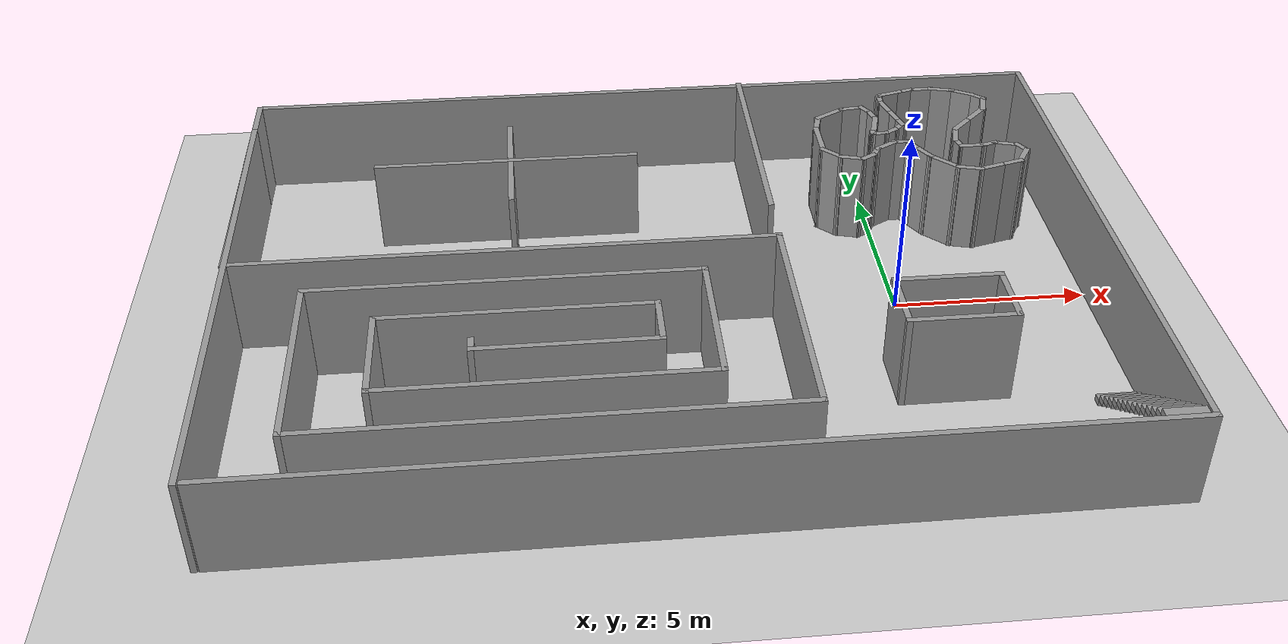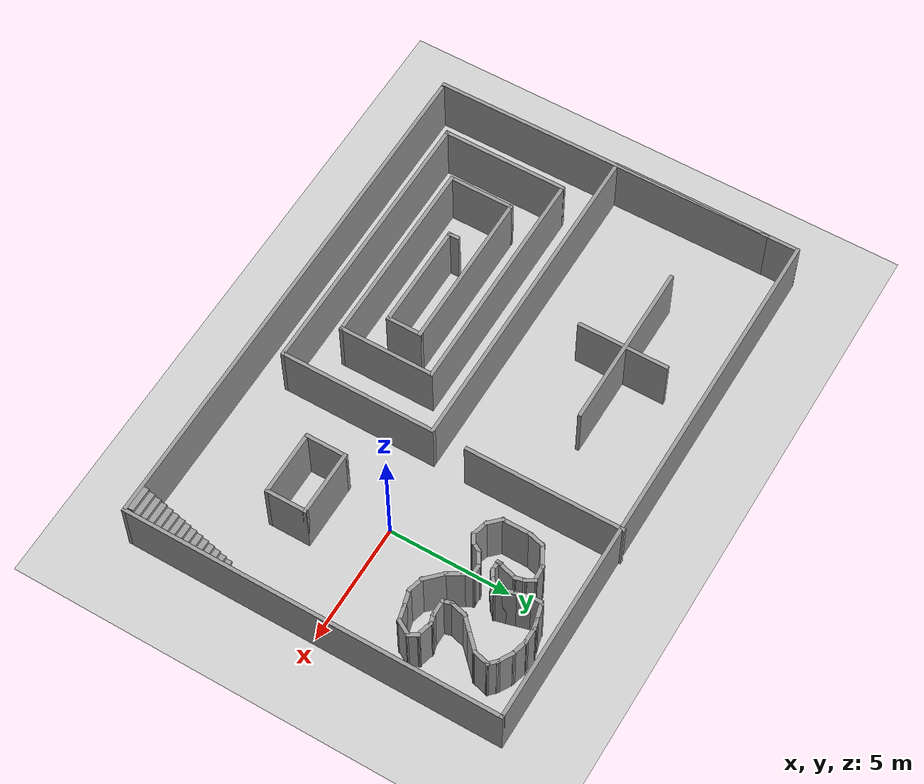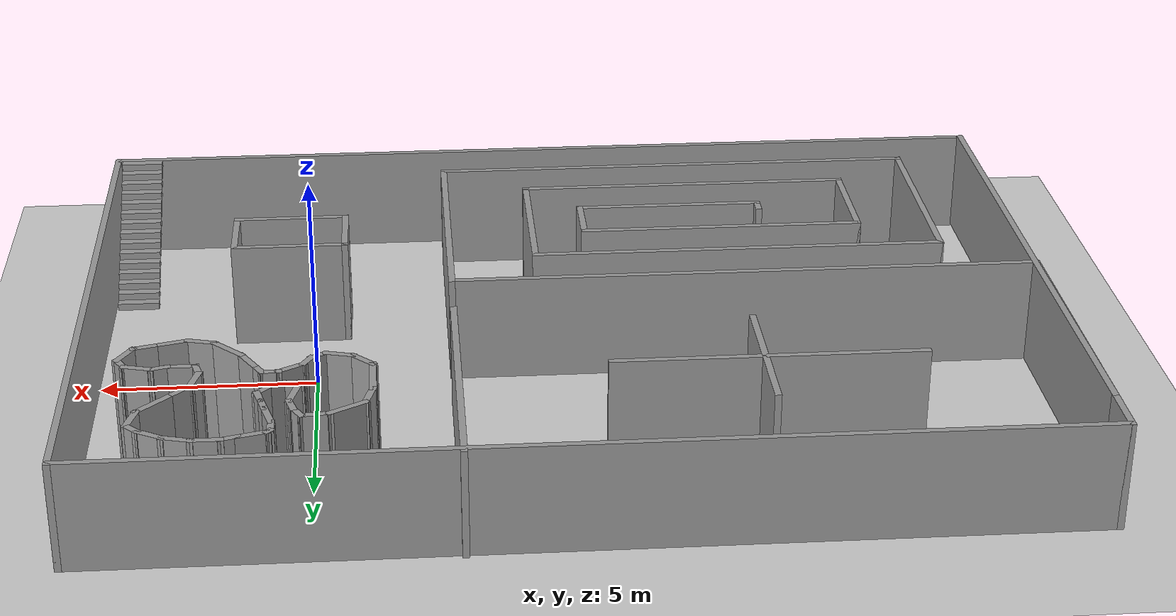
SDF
<sdf version="1.7">
 <world name="default">
  <light name="sun" type="directional">
   <pose>0 0 10 0 -0 0</pose>
   <diffuse>0.8 0.8 0.8 1</diffuse>
   <specular>0.2 0.2 0.2 1</specular>
   <attenuation>
    <range>1000</range>
    <constant>0.9</constant>
    <linear>0.01</linear>
    <quadratic>0.001</quadratic>
   </attenuation>
   <direction>-0.5 0.1 -0.9</direction>
   <spot><inner_angle>0</inner_angle><outer_angle>0</outer_angle><falloff>0</falloff></spot>
  </light>
  <model name="ground_plane">
   <static>1</static>
   <link name="link">
    <collision name="collision">
     <geometry><plane><normal>0 0 1</normal><size>100 100</size></plane></geometry>
     <surface>
      <contact><collide_bitmask>65535</collide_bitmask></contact>
      <friction><ode><mu>100</mu><mu2>50</mu2></ode></friction>
     </surface>
    </collision>
    <visual name="visual">
     <cast_shadows>0</cast_shadows>
     <geometry><plane><normal>0 0 1</normal><size>100 100</size></plane></geometry>
     <material>
      <script><uri>file://media/materials/scripts/gazebo.material</uri><name>Gazebo/Grey</name></script>
     </material>
    </visual>
   </link>
  </model>
  <gravity>0 0 -9.8</gravity>
  <magnetic_field>6e-06 2.3e-05 -4.2e-05</magnetic_field>
  <atmosphere type="adiabatic"/>
  <physics type="ode">
   <max_step_size>0.001</max_step_size>
   <real_time_factor>1</real_time_factor>
   <real_time_update_rate>1000</real_time_update_rate>
  </physics>
  <scene><ambient>0.4 0.4 0.4 1</ambient><background>0.7 0.7 0.7 1</background><shadows>1</shadows></scene>
  <spherical_coordinates>
   <surface_model>EARTH_WGS84</surface_model>
   <latitude_deg>0</latitude_deg>
   <longitude_deg>0</longitude_deg>
   <elevation>0</elevation>
   <heading_deg>0</heading_deg>
  </spherical_coordinates>
  <model name="map_figa">
   <pose>-5.8219 -0.011574 0 0 -0 0</pose>
   <link name="Stairs_0">
    <visual name="Stairs_0_Visual_0">
     <pose>10.3081 -4.25917 0.083333 0 -0 0</pose>
     <geometry><box><size>1 0.233333 0.166667</size></box></geometry>
     <material>
      <script><uri>file://media/materials/scripts/gazebo.material</uri><name>Gazebo/Grey</name></script>
      <ambient>1 1 1 1</ambient>
     </material>
     <meta><layer>0</layer></meta>
    </visual>
    <collision name="Stairs_0_Collision_0">
     <geometry><box><size>1 0.233333 0.166667</size></box></geometry>
     <pose>10.3081 -4.25917 0.083333 0 -0 0</pose>
    </collision>
    <visual name="Stairs_0_Visual_1">
     <pose>10.3081 -4.4925 0.25 0 -0 0</pose>
     <geometry><box><size>1 0.233333 0.166667</size></box></geometry>
     <material>
      <script><uri>file://media/materials/scripts/gazebo.material</uri><name>Gazebo/Grey</name></script>
      <ambient>1 1 1 1</ambient>
     </material>
     <meta><layer>0</layer></meta>
    </visual>
    <collision name="Stairs_0_Collision_1">
     <geometry><box><size>1 0.233333 0.166667</size></box></geometry>
     <pose>10.3081 -4.4925 0.25 0 -0 0</pose>
    </collision>
    <visual name="Stairs_0_Visual_2">
     <pose>10.3081 -4.72584 0.416667 0 -0 0</pose>
     <geometry><box><size>1 0.233333 0.166667</size></box></geometry>
     <material>
      <script><uri>file://media/materials/scripts/gazebo.material</uri><name>Gazebo/Grey</name></script>
      <ambient>1 1 1 1</ambient>
     </material>
     <meta><layer>0</layer></meta>
    </visual>
    <collision name="Stairs_0_Collision_2">
     <geometry><box><size>1 0.233333 0.166667</size></box></geometry>
     <pose>10.3081 -4.72584 0.416667 0 -0 0</pose>
    </collision>
    <visual name="Stairs_0_Visual_3">
     <pose>10.3081 -4.95917 0.583333 0 -0 0</pose>
     <geometry><box><size>1 0.233333 0.166667</size></box></geometry>
     <material>
      <script><uri>file://media/materials/scripts/gazebo.material</uri><name>Gazebo/Grey</name></script>
      <ambient>1 1 1 1</ambient>
     </material>
     <meta><layer>0</layer></meta>
    </visual>
    <collision name="Stairs_0_Collision_3">
     <geometry><box><size>1 0.233333 0.166667</size></box></geometry>
     <pose>10.3081 -4.95917 0.583333 0 -0 0</pose>
    </collision>
    <visual name="Stairs_0_Visual_4">
     <pose>10.3081 -5.1925 0.75 0 -0 0</pose>
     <geometry><box><size>1 0.233333 0.166667</size></box></geometry>
     <material>
      <script><uri>file://media/materials/scripts/gazebo.material</uri><name>Gazebo/Grey</name></script>
      <ambient>1 1 1 1</ambient>
     </material>
     <meta><layer>0</layer></meta>
    </visual>
    <collision name="Stairs_0_Collision_4">
     <geometry><box><size>1 0.233333 0.166667</size></box></geometry>
     <pose>10.3081 -5.1925 0.75 0 -0 0</pose>
    </collision>
    <visual name="Stairs_0_Visual_5">
     <pose>10.3081 -5.42584 0.916667 0 -0 0</pose>
     <geometry><box><size>1 0.233333 0.166667</size></box></geometry>
     <material>
      <script><uri>file://media/materials/scripts/gazebo.material</uri><name>Gazebo/Grey</name></script>
      <ambient>1 1 1 1</ambient>
     </material>
     <meta><layer>0</layer></meta>
    </visual>
    <collision name="Stairs_0_Collision_5">
     <geometry><box><size>1 0.233333 0.166667</size></box></geometry>
     <pose>10.3081 -5.42584 0.916667 0 -0 0</pose>
    </collision>
    <visual name="Stairs_0_Visual_6">
     <pose>10.3081 -5.65917 1.08333 0 -0 0</pose>
     <geometry><box><size>1 0.233333 0.166667</size></box></geometry>
     <material>
      <script><uri>file://media/materials/scripts/gazebo.material</uri><name>Gazebo/Grey</name></script>
      <ambient>1 1 1 1</ambient>
     </material>
     <meta><layer>0</layer></meta>
    </visual>
    <collision name="Stairs_0_Collision_6">
     <geometry><box><size>1 0.233333 0.166667</size></box></geometry>
     <pose>10.3081 -5.65917 1.08333 0 -0 0</pose>
    </collision>
    <visual name="Stairs_0_Visual_7">
     <pose>10.3081 -5.8925 1.25 0 -0 0</pose>
     <geometry><box><size>1 0.233333 0.166667</size></box></geometry>
     <material>
      <script><uri>file://media/materials/scripts/gazebo.material</uri><name>Gazebo/Grey</name></script>
      <ambient>1 1 1 1</ambient>
     </material>
     <meta><layer>0</layer></meta>
    </visual>
    <collision name="Stairs_0_Collision_7">
     <geometry><box><size>1 0.233333 0.166667</size></box></geometry>
     <pose>10.3081 -5.8925 1.25 0 -0 0</pose>
    </collision>
    <visual name="Stairs_0_Visual_8">
     <pose>10.3081 -6.12584 1.41667 0 -0 0</pose>
     <geometry><box><size>1 0.233333 0.166667</size></box></geometry>
     <material>
      <script><uri>file://media/materials/scripts/gazebo.material</uri><name>Gazebo/Grey</name></script>
      <ambient>1 1 1 1</ambient>
     </material>
     <meta><layer>0</layer></meta>
    </visual>
    <collision name="Stairs_0_Collision_8">
     <geometry><box><size>1 0.233333 0.166667</size></box></geometry>
     <pose>10.3081 -6.12584 1.41667 0 -0 0</pose>
    </collision>
    <visual name="Stairs_0_Visual_9">
     <pose>10.3081 -6.35917 1.58333 0 -0 0</pose>
     <geometry><box><size>1 0.233333 0.166667</size></box></geometry>
     <material>
      <script><uri>file://media/materials/scripts/gazebo.material</uri><name>Gazebo/Grey</name></script>
      <ambient>1 1 1 1</ambient>
     </material>
     <meta><layer>0</layer></meta>
    </visual>
    <collision name="Stairs_0_Collision_9">
     <geometry><box><size>1 0.233333 0.166667</size></box></geometry>
     <pose>10.3081 -6.35917 1.58333 0 -0 0</pose>
    </collision>
    <visual name="Stairs_0_Visual_10">
     <pose>10.3081 -6.5925 1.75 0 -0 0</pose>
     <geometry><box><size>1 0.233333 0.166667</size></box></geometry>
     <material>
      <script><uri>file://media/materials/scripts/gazebo.material</uri><name>Gazebo/Grey</name></script>
      <ambient>1 1 1 1</ambient>
     </material>
     <meta><layer>0</layer></meta>
    </visual>
    <collision name="Stairs_0_Collision_10">
     <geometry><box><size>1 0.233333 0.166667</size></box></geometry>
     <pose>10.3081 -6.5925 1.75 0 -0 0</pose>
    </collision>
    <visual name="Stairs_0_Visual_11">
     <pose>10.3081 -6.82584 1.91667 0 -0 0</pose>
     <geometry><box><size>1 0.233333 0.166667</size></box></geometry>
     <material>
      <script><uri>file://media/materials/scripts/gazebo.material</uri><name>Gazebo/Grey</name></script>
      <ambient>1 1 1 1</ambient>
     </material>
     <meta><layer>0</layer></meta>
    </visual>
    <collision name="Stairs_0_Collision_11">
     <geometry><box><size>1 0.233333 0.166667</size></box></geometry>
     <pose>10.3081 -6.82584 1.91667 0 -0 0</pose>
    </collision>
    <visual name="Stairs_0_Visual_12">
     <pose>10.3081 -7.05917 2.08333 0 -0 0</pose>
     <geometry><box><size>1 0.233333 0.166667</size></box></geometry>
     <material>
      <script><uri>file://media/materials/scripts/gazebo.material</uri><name>Gazebo/Grey</name></script>
      <ambient>1 1 1 1</ambient>
     </material>
     <meta><layer>0</layer></meta>
    </visual>
    <collision name="Stairs_0_Collision_12">
     <geometry><box><size>1 0.233333 0.166667</size></box></geometry>
     <pose>10.3081 -7.05917 2.08333 0 -0 0</pose>
    </collision>
    <visual name="Stairs_0_Visual_13">
     <pose>10.3081 -7.2925 2.25 0 -0 0</pose>
     <geometry><box><size>1 0.233333 0.166667</size></box></geometry>
     <material>
      <script><uri>file://media/materials/scripts/gazebo.material</uri><name>Gazebo/Grey</name></script>
      <ambient>1 1 1 1</ambient>
     </material>
     <meta><layer>0</layer></meta>
    </visual>
    <collision name="Stairs_0_Collision_13">
     <geometry><box><size>1 0.233333 0.166667</size></box></geometry>
     <pose>10.3081 -7.2925 2.25 0 -0 0</pose>
    </collision>
    <visual name="Stairs_0_Visual_14">
     <pose>10.3081 -7.52584 2.41667 0 -0 0</pose>
     <geometry><box><size>1 0.233333 0.166667</size></box></geometry>
     <material>
      <script><uri>file://media/materials/scripts/gazebo.material</uri><name>Gazebo/Grey</name></script>
      <ambient>1 1 1 1</ambient>
     </material>
     <meta><layer>0</layer></meta>
    </visual>
    <collision name="Stairs_0_Collision_14">
     <geometry><box><size>1 0.233333 0.166667</size></box></geometry>
     <pose>10.3081 -7.52584 2.41667 0 -0 0</pose>
    </collision>
   </link>
   <link name="Wall_0">
    <collision name="Wall_0_Collision">
     <geometry><box><size>14.25 0.15 2.5</size></box></geometry>
     <pose>0 0 1.25 0 -0 0</pose>
    </collision>
    <visual name="Wall_0_Visual">
     <pose>0 0 1.25 0 -0 0</pose>
     <geometry><box><size>14.25 0.15 2.5</size></box></geometry>
     <material>
      <script><uri>file://media/materials/scripts/gazebo.material</uri><name>Gazebo/Grey</name></script>
      <ambient>1 1 1 1</ambient>
     </material>
     <meta><layer>0</layer></meta>
    </visual>
    <pose>-10.8898 -0.66448 0 0 -0 -1.56584</pose>
   </link>
   <link name="Wall_10">
    <collision name="Wall_10_Collision">
     <geometry><box><size>9.75 0.15 2.5</size></box></geometry>
     <pose>0 0 1.25 0 -0 0</pose>
    </collision>
    <visual name="Wall_10_Visual">
     <pose>0 0 1.25 0 -0 0</pose>
     <geometry><box><size>9.75 0.15 2.5</size></box></geometry>
     <material>
      <script><uri>file://media/materials/scripts/gazebo.material</uri><name>Gazebo/Grey</name></script>
      <ambient>1 1 1 1</ambient>
     </material>
     <meta><layer>0</layer></meta>
    </visual>
    <pose>-4.12482 -1.31448 0 0 -0 0</pose>
   </link>
   <link name="Wall_11">
    <collision name="Wall_11_Collision">
     <geometry><box><size>4 0.15 2.5</size></box></geometry>
     <pose>0 0 1.25 0 -0 0</pose>
    </collision>
    <visual name="Wall_11_Visual">
     <pose>0 0 1.25 0 -0 0</pose>
     <geometry><box><size>4 0.15 2.5</size></box></geometry>
     <material>
      <script><uri>file://media/materials/scripts/gazebo.material</uri><name>Gazebo/Grey</name></script>
      <ambient>1 1 1 1</ambient>
     </material>
     <meta><layer>0</layer></meta>
    </visual>
    <pose>0.675184 -3.23948 0 0 -0 -1.5708</pose>
   </link>
   <link name="Wall_12">
    <collision name="Wall_12_Collision">
     <geometry><box><size>8 0.15 2.5</size></box></geometry>
     <pose>0 0 1.25 0 -0 0</pose>
    </collision>
    <visual name="Wall_12_Visual">
     <pose>0 0 1.25 0 -0 0</pose>
     <geometry><box><size>8 0.15 2.5</size></box></geometry>
     <material>
      <script><uri>file://media/materials/scripts/gazebo.material</uri><name>Gazebo/Grey</name></script>
      <ambient>1 1 1 1</ambient>
     </material>
     <meta><layer>0</layer></meta>
    </visual>
    <pose>-3.24982 -5.16448 0 0 -0 3.14159</pose>
   </link>
   <link name="Wall_13">
    <collision name="Wall_13_Collision">
     <geometry><box><size>2.75 0.15 2.5</size></box></geometry>
     <pose>0 0 1.25 0 -0 0</pose>
    </collision>
    <visual name="Wall_13_Visual">
     <pose>0 0 1.25 0 -0 0</pose>
     <geometry><box><size>2.75 0.15 2.5</size></box></geometry>
     <material>
      <script><uri>file://media/materials/scripts/gazebo.material</uri><name>Gazebo/Grey</name></script>
      <ambient>1 1 1 1</ambient>
     </material>
     <meta><layer>0</layer></meta>
    </visual>
    <pose>-7.17482 -3.86448 0 0 -0 1.5708</pose>
   </link>
   <link name="Wall_14">
    <collision name="Wall_14_Collision">
     <geometry><box><size>6.75 0.15 2.5</size></box></geometry>
     <pose>0 0 1.25 0 -0 0</pose>
    </collision>
    <visual name="Wall_14_Visual">
     <pose>0 0 1.25 0 -0 0</pose>
     <geometry><box><size>6.75 0.15 2.5</size></box></geometry>
     <material>
      <script><uri>file://media/materials/scripts/gazebo.material</uri><name>Gazebo/Grey</name></script>
      <ambient>1 1 1 1</ambient>
     </material>
     <meta><layer>0</layer></meta>
    </visual>
    <pose>-3.87482 -2.56448 0 0 -0 0</pose>
   </link>
   <link name="Wall_15">
    <collision name="Wall_15_Collision">
     <geometry><box><size>1.5 0.15 2.5</size></box></geometry>
     <pose>0 0 1.25 0 -0 0</pose>
    </collision>
    <visual name="Wall_15_Visual">
     <pose>0 0 1.25 0 -0 0</pose>
     <geometry><box><size>1.5 0.15 2.5</size></box></geometry>
     <material>
      <script><uri>file://media/materials/scripts/gazebo.material</uri><name>Gazebo/Grey</name></script>
      <ambient>1 1 1 1</ambient>
     </material>
     <meta><layer>0</layer></meta>
    </visual>
    <pose>-0.574816 -3.23948 0 0 -0 -1.5708</pose>
   </link>
   <link name="Wall_16">
    <collision name="Wall_16_Collision">
     <geometry><box><size>4.5 0.15 2.5</size></box></geometry>
     <pose>0 0 1.25 0 -0 0</pose>
    </collision>
    <visual name="Wall_16_Visual">
     <pose>0 0 1.25 0 -0 0</pose>
     <geometry><box><size>4.5 0.15 2.5</size></box></geometry>
     <material>
      <script><uri>file://media/materials/scripts/gazebo.material</uri><name>Gazebo/Grey</name></script>
      <ambient>1 1 1 1</ambient>
     </material>
     <meta><layer>0</layer></meta>
    </visual>
    <pose>-2.74982 -3.91448 0 0 -0 3.14159</pose>
   </link>
   <link name="Wall_17">
    <collision name="Wall_17_Collision">
     <geometry><box><size>0.5 0.15 2.5</size></box></geometry>
     <pose>0 0 1.25 0 -0 0</pose>
    </collision>
    <visual name="Wall_17_Visual">
     <pose>0 0 1.25 0 -0 0</pose>
     <geometry><box><size>0.5 0.15 2.5</size></box></geometry>
     <material>
      <script><uri>file://media/materials/scripts/gazebo.material</uri><name>Gazebo/Grey</name></script>
      <ambient>1 1 1 1</ambient>
     </material>
     <meta><layer>0</layer></meta>
    </visual>
    <pose>-4.92482 -3.73948 0 0 -0 1.5708</pose>
   </link>
   <link name="Wall_20">
    <collision name="Wall_20_Collision">
     <geometry><box><size>6.5 0.15 2.5</size></box></geometry>
     <pose>0 0 1.25 0 -0 0</pose>
    </collision>
    <visual name="Wall_20_Visual">
     <pose>0 0 1.25 0 -0 0</pose>
     <geometry><box><size>6.5 0.15 2.5</size></box></geometry>
     <material>
      <script><uri>file://media/materials/scripts/gazebo.material</uri><name>Gazebo/Grey</name></script>
      <ambient>1 1 1 1</ambient>
     </material>
     <meta><layer>0</layer></meta>
    </visual>
    <pose>2.68245 4.53977 0 0 -0 -1.5708</pose>
   </link>
   <link name="Wall_22">
    <collision name="Wall_22_Collision">
     <geometry><box><size>7 0.15 2.5</size></box></geometry>
     <pose>0 0 1.25 0 -0 0</pose>
    </collision>
    <visual name="Wall_22_Visual">
     <pose>0 0 1.25 0 -0 0</pose>
     <geometry><box><size>7 0.15 2.5</size></box></geometry>
     <material>
      <script><uri>file://media/materials/scripts/gazebo.material</uri><name>Gazebo/Grey</name></script>
      <ambient>1 1 1 1</ambient>
     </material>
     <meta><layer>0</layer></meta>
    </visual>
    <pose>-4.03678 4.14679 0 0 -0 0</pose>
   </link>
   <link name="Wall_24">
    <collision name="Wall_24_Collision">
     <geometry><box><size>3.75 0.15 2.5</size></box></geometry>
     <pose>0 0 1.25 0 -0 0</pose>
    </collision>
    <visual name="Wall_24_Visual">
     <pose>0 0 1.25 0 -0 0</pose>
     <geometry><box><size>3.75 0.15 2.5</size></box></geometry>
     <material>
      <script><uri>file://media/materials/scripts/gazebo.material</uri><name>Gazebo/Grey</name></script>
      <ambient>1 1 1 1</ambient>
     </material>
     <meta><layer>0</layer></meta>
    </visual>
    <pose>-3.92879 4.06082 0 0 -0 -1.5708</pose>
   </link>
   <link name="Wall_26">
    <collision name="Wall_26_Collision">
     <geometry><box><size>22 0.15 2.5</size></box></geometry>
     <pose>0 0 1.25 0 -0 0</pose>
    </collision>
    <visual name="Wall_26_Visual">
     <pose>0 0 1.25 0 -0 0</pose>
     <geometry><box><size>22 0.15 2.5</size></box></geometry>
     <material>
      <script><uri>file://media/materials/scripts/gazebo.material</uri><name>Gazebo/Grey</name></script>
      <ambient>1 1 1 1</ambient>
     </material>
     <meta><layer>0</layer></meta>
    </visual>
    <pose>0.000184 7.63552 0 0 -0 0</pose>
   </link>
   <link name="Wall_27">
    <collision name="Wall_27_Collision">
     <geometry><box><size>15.5 0.15 2.5</size></box></geometry>
     <pose>0 0 1.25 0 -0 0</pose>
    </collision>
    <visual name="Wall_27_Visual">
     <pose>0 0 1.25 0 -0 0</pose>
     <geometry><box><size>15.5 0.15 2.5</size></box></geometry>
     <material>
      <script><uri>file://media/materials/scripts/gazebo.material</uri><name>Gazebo/Grey</name></script>
      <ambient>1 1 1 1</ambient>
     </material>
     <meta><layer>0</layer></meta>
    </visual>
    <pose>10.9252 -0.03948 0 0 -0 -1.5708</pose>
   </link>
   <link name="Wall_28">
    <collision name="Wall_28_Collision">
     <geometry><box><size>21.75 0.15 2.5</size></box></geometry>
     <pose>0 0 1.25 0 -0 0</pose>
    </collision>
    <visual name="Wall_28_Visual">
     <pose>0 0 1.25 0 -0 0</pose>
     <geometry><box><size>21.75 0.15 2.5</size></box></geometry>
     <material>
      <script><uri>file://media/materials/scripts/gazebo.material</uri><name>Gazebo/Grey</name></script>
      <ambient>1 1 1 1</ambient>
     </material>
     <meta><layer>0</layer></meta>
    </visual>
    <pose>0.125184 -7.71448 0 0 -0 3.14159</pose>
   </link>
   <link name="Wall_30">
    <collision name="Wall_30_Collision">
     <geometry><box><size>1 0.15 2.5</size></box></geometry>
     <pose>0 0 1.25 0 -0 0</pose>
    </collision>
    <visual name="Wall_30_Visual">
     <pose>0 0 1.25 0 -0 0</pose>
     <geometry><box><size>1 0.15 2.5</size></box></geometry>
     <material>
      <script><uri>file://media/materials/scripts/gazebo.material</uri><name>Gazebo/Grey</name></script>
      <ambient>1 1 1 1</ambient>
     </material>
     <meta><layer>0</layer></meta>
    </visual>
    <pose>5.00786 5.78824 0 0 -0 -2.61799</pose>
   </link>
   <link name="Wall_31">
    <collision name="Wall_31_Collision">
     <geometry><box><size>0.75 0.15 2.5</size></box></geometry>
     <pose>0 0 1.25 0 -0 0</pose>
    </collision>
    <visual name="Wall_31_Visual">
     <pose>0 0 1.25 0 -0 0</pose>
     <geometry><box><size>0.75 0.15 2.5</size></box></geometry>
     <material>
      <script><uri>file://media/materials/scripts/gazebo.material</uri><name>Gazebo/Grey</name></script>
      <ambient>1 1 1 1</ambient>
     </material>
     <meta><layer>0</layer></meta>
    </visual>
    <pose>4.56215 5.28596 0 0 -0 -1.8326</pose>
   </link>
   <link name="Wall_32">
    <collision name="Wall_32_Collision">
     <geometry><box><size>1.25 0.15 2.5</size></box></geometry>
     <pose>0 0 1.25 0 -0 0</pose>
    </collision>
    <visual name="Wall_32_Visual">
     <pose>0 0 1.25 0 -0 0</pose>
     <geometry><box><size>1.25 0.15 2.5</size></box></geometry>
     <material>
      <script><uri>file://media/materials/scripts/gazebo.material</uri><name>Gazebo/Grey</name></script>
      <ambient>1 1 1 1</ambient>
     </material>
     <meta><layer>0</layer></meta>
    </visual>
    <pose>4.48451 4.44618 0 0 -0 -1.5708</pose>
   </link>
   <link name="Wall_33">
    <collision name="Wall_33_Collision">
     <geometry><box><size>0.75 0.15 2.5</size></box></geometry>
     <pose>0 0 1.25 0 -0 0</pose>
    </collision>
    <visual name="Wall_33_Visual">
     <pose>0 0 1.25 0 -0 0</pose>
     <geometry><box><size>0.75 0.15 2.5</size></box></geometry>
     <material>
      <script><uri>file://media/materials/scripts/gazebo.material</uri><name>Gazebo/Grey</name></script>
      <ambient>1 1 1 1</ambient>
     </material>
     <meta><layer>0</layer></meta>
    </visual>
    <pose>4.69664 3.68405 0 0 -0 -0.785398</pose>
   </link>
   <link name="Wall_34">
    <collision name="Wall_34_Collision">
     <geometry><box><size>0.75 0.15 2.5</size></box></geometry>
     <pose>0 0 1.25 0 -0 0</pose>
    </collision>
    <visual name="Wall_34_Visual">
     <pose>0 0 1.25 0 -0 0</pose>
     <geometry><box><size>0.75 0.15 2.5</size></box></geometry>
     <material>
      <script><uri>file://media/materials/scripts/gazebo.material</uri><name>Gazebo/Grey</name></script>
      <ambient>1 1 1 1</ambient>
     </material>
     <meta><layer>0</layer></meta>
    </visual>
    <pose>5.19855 3.39427 0 0 -0 -0.261799</pose>
   </link>
   <link name="Wall_35">
    <collision name="Wall_35_Collision">
     <geometry><box><size>0.5 0.15 2.5</size></box></geometry>
     <pose>0 0 1.25 0 -0 0</pose>
    </collision>
    <visual name="Wall_35_Visual">
     <pose>0 0 1.25 0 -0 0</pose>
     <geometry><box><size>0.5 0.15 2.5</size></box></geometry>
     <material>
      <script><uri>file://media/materials/scripts/gazebo.material</uri><name>Gazebo/Grey</name></script>
      <ambient>1 1 1 1</ambient>
     </material>
     <meta><layer>0</layer></meta>
    </visual>
    <pose>5.63988 3.40413 0 0 -0 0.523599</pose>
   </link>
   <link name="Wall_36">
    <collision name="Wall_36_Collision">
     <geometry><box><size>0.5 0.15 2.5</size></box></geometry>
     <pose>0 0 1.25 0 -0 0</pose>
    </collision>
    <visual name="Wall_36_Visual">
     <pose>0 0 1.25 0 -0 0</pose>
     <geometry><box><size>0.5 0.15 2.5</size></box></geometry>
     <material>
      <script><uri>file://media/materials/scripts/gazebo.material</uri><name>Gazebo/Grey</name></script>
      <ambient>1 1 1 1</ambient>
     </material>
     <meta><layer>0</layer></meta>
    </visual>
    <pose>5.87894 3.64318 0 0 -0 1.0472</pose>
   </link>
   <link name="Wall_37">
    <collision name="Wall_37_Collision">
     <geometry><box><size>0.75 0.15 2.5</size></box></geometry>
     <pose>0 0 1.25 0 -0 0</pose>
    </collision>
    <visual name="Wall_37_Visual">
     <pose>0 0 1.25 0 -0 0</pose>
     <geometry><box><size>0.75 0.15 2.5</size></box></geometry>
     <material>
      <script><uri>file://media/materials/scripts/gazebo.material</uri><name>Gazebo/Grey</name></script>
      <ambient>1 1 1 1</ambient>
     </material>
     <meta><layer>0</layer></meta>
    </visual>
    <pose>6.22624 3.94474 0 0 -0 0.523599</pose>
   </link>
   <link name="Wall_38">
    <collision name="Wall_38_Collision">
     <geometry><box><size>0.5 0.15 2.5</size></box></geometry>
     <pose>0 0 1.25 0 -0 0</pose>
    </collision>
    <visual name="Wall_38_Visual">
     <pose>0 0 1.25 0 -0 0</pose>
     <geometry><box><size>0.5 0.15 2.5</size></box></geometry>
     <material>
      <script><uri>file://media/materials/scripts/gazebo.material</uri><name>Gazebo/Grey</name></script>
      <ambient>1 1 1 1</ambient>
     </material>
     <meta><layer>0</layer></meta>
    </visual>
    <pose>6.66105 4.09474 0 0 -0 0</pose>
   </link>
   <link name="Wall_39">
    <collision name="Wall_39_Collision">
     <geometry><box><size>0.5 0.15 2.5</size></box></geometry>
     <pose>0 0 1.25 0 -0 0</pose>
    </collision>
    <visual name="Wall_39_Visual">
     <pose>0 0 1.25 0 -0 0</pose>
     <geometry><box><size>0.5 0.15 2.5</size></box></geometry>
     <material>
      <script><uri>file://media/materials/scripts/gazebo.material</uri><name>Gazebo/Grey</name></script>
      <ambient>1 1 1 1</ambient>
     </material>
     <meta><layer>0</layer></meta>
    </visual>
    <pose>6.92355 3.94318 0 0 -0 -1.0472</pose>
   </link>
   <link name="Wall_4">
    <collision name="Wall_4_Collision">
     <geometry><box><size>1.75 0.15 2.5</size></box></geometry>
     <pose>0 0 1.25 0 -0 0</pose>
    </collision>
    <visual name="Wall_4_Visual">
     <pose>0 0 1.25 0 -0 0</pose>
     <geometry><box><size>1.75 0.15 2.5</size></box></geometry>
     <material>
      <script><uri>file://media/materials/scripts/gazebo.material</uri><name>Gazebo/Grey</name></script>
      <ambient>1 1 1 1</ambient>
     </material>
     <meta><layer>0</layer></meta>
    </visual>
    <pose>-10.9248 6.83552 0 0 -0 -1.5708</pose>
   </link>
   <link name="Wall_40">
    <collision name="Wall_40_Collision">
     <geometry><box><size>0.75 0.15 2.5</size></box></geometry>
     <pose>0 0 1.25 0 -0 0</pose>
    </collision>
    <visual name="Wall_40_Visual">
     <pose>0 0 1.25 0 -0 0</pose>
     <geometry><box><size>0.75 0.15 2.5</size></box></geometry>
     <material>
      <script><uri>file://media/materials/scripts/gazebo.material</uri><name>Gazebo/Grey</name></script>
      <ambient>1 1 1 1</ambient>
     </material>
     <meta><layer>0</layer></meta>
    </visual>
    <pose>7.16105 3.53182 0 0 -0 -1.0472</pose>
   </link>
   <link name="Wall_41">
    <collision name="Wall_41_Collision">
     <geometry><box><size>1 0.15 2.5</size></box></geometry>
     <pose>0 0 1.25 0 -0 0</pose>
    </collision>
    <visual name="Wall_41_Visual">
     <pose>0 0 1.25 0 -0 0</pose>
     <geometry><box><size>1 0.15 2.5</size></box></geometry>
     <material>
      <script><uri>file://media/materials/scripts/gazebo.material</uri><name>Gazebo/Grey</name></script>
      <ambient>1 1 1 1</ambient>
     </material>
     <meta><layer>0</layer></meta>
    </visual>
    <pose>7.61157 2.97149 0 0 -0 -0.785398</pose>
   </link>
   <link name="Wall_42">
    <collision name="Wall_42_Collision">
     <geometry><box><size>0.75 0.15 2.5</size></box></geometry>
     <pose>0 0 1.25 0 -0 0</pose>
    </collision>
    <visual name="Wall_42_Visual">
     <pose>0 0 1.25 0 -0 0</pose>
     <geometry><box><size>0.75 0.15 2.5</size></box></geometry>
     <material>
      <script><uri>file://media/materials/scripts/gazebo.material</uri><name>Gazebo/Grey</name></script>
      <ambient>1 1 1 1</ambient>
     </material>
     <meta><layer>0</layer></meta>
    </visual>
    <pose>8.20187 2.59333 0 0 -0 -0.261799</pose>
   </link>
   <link name="Wall_43">
    <collision name="Wall_43_Collision">
     <geometry><box><size>0.75 0.15 2.5</size></box></geometry>
     <pose>0 0 1.25 0 -0 0</pose>
    </collision>
    <visual name="Wall_43_Visual">
     <pose>0 0 1.25 0 -0 0</pose>
     <geometry><box><size>0.75 0.15 2.5</size></box></geometry>
     <material>
      <script><uri>file://media/materials/scripts/gazebo.material</uri><name>Gazebo/Grey</name></script>
      <ambient>1 1 1 1</ambient>
     </material>
     <meta><layer>0</layer></meta>
    </visual>
    <pose>8.78143 2.59333 0 0 -0 0.261799</pose>
   </link>
   <link name="Wall_44">
    <collision name="Wall_44_Collision">
     <geometry><box><size>0.75 0.15 2.5</size></box></geometry>
     <pose>0 0 1.25 0 -0 0</pose>
    </collision>
    <visual name="Wall_44_Visual">
     <pose>0 0 1.25 0 -0 0</pose>
     <geometry><box><size>0.75 0.15 2.5</size></box></geometry>
     <material>
      <script><uri>file://media/materials/scripts/gazebo.material</uri><name>Gazebo/Grey</name></script>
      <ambient>1 1 1 1</ambient>
     </material>
     <meta><layer>0</layer></meta>
    </visual>
    <pose>9.36098 2.74862 0 0 -0 0.261799</pose>
   </link>
   <link name="Wall_45">
    <collision name="Wall_45_Collision">
     <geometry><box><size>0.75 0.15 2.5</size></box></geometry>
     <pose>0 0 1.25 0 -0 0</pose>
    </collision>
    <visual name="Wall_45_Visual">
     <pose>0 0 1.25 0 -0 0</pose>
     <geometry><box><size>0.75 0.15 2.5</size></box></geometry>
     <material>
      <script><uri>file://media/materials/scripts/gazebo.material</uri><name>Gazebo/Grey</name></script>
      <ambient>1 1 1 1</ambient>
     </material>
     <meta><layer>0</layer></meta>
    </visual>
    <pose>9.80076 3.08607 0 0 -0 1.0472</pose>
   </link>
   <link name="Wall_46">
    <collision name="Wall_46_Collision">
     <geometry><box><size>0.5 0.15 2.5</size></box></geometry>
     <pose>0 0 1.25 0 -0 0</pose>
    </collision>
    <visual name="Wall_46_Visual">
     <pose>0 0 1.25 0 -0 0</pose>
     <geometry><box><size>0.5 0.15 2.5</size></box></geometry>
     <material>
      <script><uri>file://media/materials/scripts/gazebo.material</uri><name>Gazebo/Grey</name></script>
      <ambient>1 1 1 1</ambient>
     </material>
     <meta><layer>0</layer></meta>
    </visual>
    <pose>9.86326 3.49743 0 0 -0 2.0944</pose>
   </link>
   <link name="Wall_47">
    <collision name="Wall_47_Collision">
     <geometry><box><size>0.75 0.15 2.5</size></box></geometry>
     <pose>0 0 1.25 0 -0 0</pose>
    </collision>
    <visual name="Wall_47_Visual">
     <pose>0 0 1.25 0 -0 0</pose>
     <geometry><box><size>0.75 0.15 2.5</size></box></geometry>
     <material>
      <script><uri>file://media/materials/scripts/gazebo.material</uri><name>Gazebo/Grey</name></script>
      <ambient>1 1 1 1</ambient>
     </material>
     <meta><layer>0</layer></meta>
    </visual>
    <pose>9.48598 3.72663 0 0 -0 2.87979</pose>
   </link>
   <link name="Wall_48">
    <collision name="Wall_48_Collision">
     <geometry><box><size>0.5 0.15 2.5</size></box></geometry>
     <pose>0 0 1.25 0 -0 0</pose>
    </collision>
    <visual name="Wall_48_Visual">
     <pose>0 0 1.25 0 -0 0</pose>
     <geometry><box><size>0.5 0.15 2.5</size></box></geometry>
     <material>
      <script><uri>file://media/materials/scripts/gazebo.material</uri><name>Gazebo/Grey</name></script>
      <ambient>1 1 1 1</ambient>
     </material>
     <meta><layer>0</layer></meta>
    </visual>
    <pose>9.02717 3.75899 0 0 -0 -2.87979</pose>
   </link>
   <link name="Wall_49">
    <collision name="Wall_49_Collision">
     <geometry><box><size>0.75 0.15 2.5</size></box></geometry>
     <pose>0 0 1.25 0 -0 0</pose>
    </collision>
    <visual name="Wall_49_Visual">
     <pose>0 0 1.25 0 -0 0</pose>
     <geometry><box><size>0.75 0.15 2.5</size></box></geometry>
     <material>
      <script><uri>file://media/materials/scripts/gazebo.material</uri><name>Gazebo/Grey</name></script>
      <ambient>1 1 1 1</ambient>
     </material>
     <meta><layer>0</layer></meta>
    </visual>
    <pose>8.55813 3.71369 0 0 -0 3.14159</pose>
   </link>
   <link name="Wall_5">
    <collision name="Wall_5_Collision">
     <geometry><box><size>6.25 0.15 2.5</size></box></geometry>
     <pose>0 0 1.25 0 -0 0</pose>
    </collision>
    <visual name="Wall_5_Visual">
     <pose>0 0 1.25 0 -0 0</pose>
     <geometry><box><size>6.25 0.15 2.5</size></box></geometry>
     <material>
      <script><uri>file://media/materials/scripts/gazebo.material</uri><name>Gazebo/Grey</name></script>
      <ambient>1 1 1 1</ambient>
     </material>
     <meta><layer>0</layer></meta>
    </visual>
    <pose>-10.9248 2.98552 0 0 -0 -1.5708</pose>
   </link>
   <link name="Wall_50">
    <collision name="Wall_50_Collision">
     <geometry><box><size>0.5 0.15 2.5</size></box></geometry>
     <pose>0 0 1.25 0 -0 0</pose>
    </collision>
    <visual name="Wall_50_Visual">
     <pose>0 0 1.25 0 -0 0</pose>
     <geometry><box><size>0.5 0.15 2.5</size></box></geometry>
     <material>
      <script><uri>file://media/materials/scripts/gazebo.material</uri><name>Gazebo/Grey</name></script>
      <ambient>1 1 1 1</ambient>
     </material>
     <meta><layer>0</layer></meta>
    </visual>
    <pose>8.21284 3.88273 0 0 -0 1.8326</pose>
   </link>
   <link name="Wall_51">
    <collision name="Wall_51_Collision">
     <geometry><box><size>0.75 0.15 2.5</size></box></geometry>
     <pose>0 0 1.25 0 -0 0</pose>
    </collision>
    <visual name="Wall_51_Visual">
     <pose>0 0 1.25 0 -0 0</pose>
     <geometry><box><size>0.75 0.15 2.5</size></box></geometry>
     <material>
      <script><uri>file://media/materials/scripts/gazebo.material</uri><name>Gazebo/Grey</name></script>
      <ambient>1 1 1 1</ambient>
     </material>
     <meta><layer>0</layer></meta>
    </visual>
    <pose>8.24519 4.34154 0 0 -0 1.309</pose>
   </link>
   <link name="Wall_52">
    <collision name="Wall_52_Collision">
     <geometry><box><size>0.75 0.15 2.5</size></box></geometry>
     <pose>0 0 1.25 0 -0 0</pose>
    </collision>
    <visual name="Wall_52_Visual">
     <pose>0 0 1.25 0 -0 0</pose>
     <geometry><box><size>0.75 0.15 2.5</size></box></geometry>
     <material>
      <script><uri>file://media/materials/scripts/gazebo.material</uri><name>Gazebo/Grey</name></script>
      <ambient>1 1 1 1</ambient>
     </material>
     <meta><layer>0</layer></meta>
    </visual>
    <pose>8.53497 4.84345 0 0 -0 0.785398</pose>
   </link>
   <link name="Wall_53">
    <collision name="Wall_53_Collision">
     <geometry><box><size>1 0.15 2.5</size></box></geometry>
     <pose>0 0 1.25 0 -0 0</pose>
    </collision>
    <visual name="Wall_53_Visual">
     <pose>0 0 1.25 0 -0 0</pose>
     <geometry><box><size>1 0.15 2.5</size></box></geometry>
     <material>
      <script><uri>file://media/materials/scripts/gazebo.material</uri><name>Gazebo/Grey</name></script>
      <ambient>1 1 1 1</ambient>
     </material>
     <meta><layer>0</layer></meta>
    </visual>
    <pose>9.04762 5.35611 0 0 -0 0.785398</pose>
   </link>
   <link name="Wall_54">
    <collision name="Wall_54_Collision">
     <geometry><box><size>0.75 0.15 2.5</size></box></geometry>
     <pose>0 0 1.25 0 -0 0</pose>
    </collision>
    <visual name="Wall_54_Visual">
     <pose>0 0 1.25 0 -0 0</pose>
     <geometry><box><size>0.75 0.15 2.5</size></box></geometry>
     <material>
      <script><uri>file://media/materials/scripts/gazebo.material</uri><name>Gazebo/Grey</name></script>
      <ambient>1 1 1 1</ambient>
     </material>
     <meta><layer>0</layer></meta>
    </visual>
    <pose>9.42579 5.9464 0 0 -0 1.309</pose>
   </link>
   <link name="Wall_55">
    <collision name="Wall_55_Collision">
     <geometry><box><size>0.5 0.15 2.5</size></box></geometry>
     <pose>0 0 1.25 0 -0 0</pose>
    </collision>
    <visual name="Wall_55_Visual">
     <pose>0 0 1.25 0 -0 0</pose>
     <geometry><box><size>0.5 0.15 2.5</size></box></geometry>
     <material>
      <script><uri>file://media/materials/scripts/gazebo.material</uri><name>Gazebo/Grey</name></script>
      <ambient>1 1 1 1</ambient>
     </material>
     <meta><layer>0</layer></meta>
    </visual>
    <pose>9.37969 6.35993 0 0 -0 2.35619</pose>
   </link>
   <link name="Wall_56">
    <collision name="Wall_56_Collision">
     <geometry><box><size>0.75 0.15 2.5</size></box></geometry>
     <pose>0 0 1.25 0 -0 0</pose>
    </collision>
    <visual name="Wall_56_Visual">
     <pose>0 0 1.25 0 -0 0</pose>
     <geometry><box><size>0.75 0.15 2.5</size></box></geometry>
     <material>
      <script><uri>file://media/materials/scripts/gazebo.material</uri><name>Gazebo/Grey</name></script>
      <ambient>1 1 1 1</ambient>
     </material>
     <meta><layer>0</layer></meta>
    </visual>
    <pose>8.99614 6.63367 0 0 -0 2.61799</pose>
   </link>
   <link name="Wall_57">
    <collision name="Wall_57_Collision">
     <geometry><box><size>0.75 0.15 2.5</size></box></geometry>
     <pose>0 0 1.25 0 -0 0</pose>
    </collision>
    <visual name="Wall_57_Visual">
     <pose>0 0 1.25 0 -0 0</pose>
     <geometry><box><size>0.75 0.15 2.5</size></box></geometry>
     <material>
      <script><uri>file://media/materials/scripts/gazebo.material</uri><name>Gazebo/Grey</name></script>
      <ambient>1 1 1 1</ambient>
     </material>
     <meta><layer>0</layer></meta>
    </visual>
    <pose>8.44655 6.86132 0 0 -0 2.87979</pose>
   </link>
   <link name="Wall_58">
    <collision name="Wall_58_Collision">
     <geometry><box><size>0.75 0.15 2.5</size></box></geometry>
     <pose>0 0 1.25 0 -0 0</pose>
    </collision>
    <visual name="Wall_58_Visual">
     <pose>0 0 1.25 0 -0 0</pose>
     <geometry><box><size>0.75 0.15 2.5</size></box></geometry>
     <material>
      <script><uri>file://media/materials/scripts/gazebo.material</uri><name>Gazebo/Grey</name></script>
      <ambient>1 1 1 1</ambient>
     </material>
     <meta><layer>0</layer></meta>
    </visual>
    <pose>7.85677 6.93896 0 0 -0 3.14159</pose>
   </link>
   <link name="Wall_59">
    <collision name="Wall_59_Collision">
     <geometry><box><size>0.5 0.15 2.5</size></box></geometry>
     <pose>0 0 1.25 0 -0 0</pose>
    </collision>
    <visual name="Wall_59_Visual">
     <pose>0 0 1.25 0 -0 0</pose>
     <geometry><box><size>0.5 0.15 2.5</size></box></geometry>
     <material>
      <script><uri>file://media/materials/scripts/gazebo.material</uri><name>Gazebo/Grey</name></script>
      <ambient>1 1 1 1</ambient>
     </material>
     <meta><layer>0</layer></meta>
    </visual>
    <pose>7.38774 6.89367 0 0 -0 -2.87979</pose>
   </link>
   <link name="Wall_6">
    <collision name="Wall_6_Collision">
     <geometry><box><size>13.75 0.15 2.5</size></box></geometry>
     <pose>0 0 1.25 0 -0 0</pose>
    </collision>
    <visual name="Wall_6_Visual">
     <pose>0 0 1.25 0 -0 0</pose>
     <geometry><box><size>13.75 0.15 2.5</size></box></geometry>
     <material>
      <script><uri>file://media/materials/scripts/gazebo.material</uri><name>Gazebo/Grey</name></script>
      <ambient>1 1 1 1</ambient>
     </material>
     <meta><layer>0</layer></meta>
    </visual>
    <pose>-4.12482 -0.06448 0 0 -0 0</pose>
   </link>
   <link name="Wall_60">
    <collision name="Wall_60_Collision">
     <geometry><box><size>0.75 0.15 2.5</size></box></geometry>
     <pose>0 0 1.25 0 -0 0</pose>
    </collision>
    <visual name="Wall_60_Visual">
     <pose>0 0 1.25 0 -0 0</pose>
     <geometry><box><size>0.75 0.15 2.5</size></box></geometry>
     <material>
      <script><uri>file://media/materials/scripts/gazebo.material</uri><name>Gazebo/Grey</name></script>
      <ambient>1 1 1 1</ambient>
     </material>
     <meta><layer>0</layer></meta>
    </visual>
    <pose>6.92892 6.77073 0 0 -0 -2.87979</pose>
   </link>
   <link name="Wall_61">
    <collision name="Wall_61_Collision">
     <geometry><box><size>0.25 0.15 2.5</size></box></geometry>
     <pose>0 0 1.25 0 -0 0</pose>
    </collision>
    <visual name="Wall_61_Visual">
     <pose>0 0 1.25 0 -0 0</pose>
     <geometry><box><size>0.25 0.15 2.5</size></box></geometry>
     <material>
      <script><uri>file://media/materials/scripts/gazebo.material</uri><name>Gazebo/Grey</name></script>
      <ambient>1 1 1 1</ambient>
     </material>
     <meta><layer>0</layer></meta>
    </visual>
    <pose>6.60379 6.65773 0 0 -0 -2.35619</pose>
   </link>
   <link name="Wall_62">
    <collision name="Wall_62_Collision">
     <geometry><box><size>0.5 0.15 2.5</size></box></geometry>
     <pose>0 0 1.25 0 -0 0</pose>
    </collision>
    <visual name="Wall_62_Visual">
     <pose>0 0 1.25 0 -0 0</pose>
     <geometry><box><size>0.5 0.15 2.5</size></box></geometry>
     <material>
      <script><uri>file://media/materials/scripts/gazebo.material</uri><name>Gazebo/Grey</name></script>
      <ambient>1 1 1 1</ambient>
     </material>
     <meta><layer>0</layer></meta>
    </visual>
    <pose>6.56843 6.44737 0 0 -0 -1.5708</pose>
   </link>
   <link name="Wall_63">
    <collision name="Wall_63_Collision">
     <geometry><box><size>0.75 0.15 2.5</size></box></geometry>
     <pose>0 0 1.25 0 -0 0</pose>
    </collision>
    <visual name="Wall_63_Visual">
     <pose>0 0 1.25 0 -0 0</pose>
     <geometry><box><size>0.75 0.15 2.5</size></box></geometry>
     <material>
      <script><uri>file://media/materials/scripts/gazebo.material</uri><name>Gazebo/Grey</name></script>
      <ambient>1 1 1 1</ambient>
     </material>
     <meta><layer>0</layer></meta>
    </visual>
    <pose>6.64608 5.98259 0 0 -0 -1.309</pose>
   </link>
   <link name="Wall_64">
    <collision name="Wall_64_Collision">
     <geometry><box><size>0.5 0.15 2.5</size></box></geometry>
     <pose>0 0 1.25 0 -0 0</pose>
    </collision>
    <visual name="Wall_64_Visual">
     <pose>0 0 1.25 0 -0 0</pose>
     <geometry><box><size>0.5 0.15 2.5</size></box></geometry>
     <material>
      <script><uri>file://media/materials/scripts/gazebo.material</uri><name>Gazebo/Grey</name></script>
      <ambient>1 1 1 1</ambient>
     </material>
     <meta><layer>0</layer></meta>
    </visual>
    <pose>6.76902 5.52378 0 0 -0 -1.309</pose>
   </link>
   <link name="Wall_65">
    <collision name="Wall_65_Collision">
     <geometry><box><size>0.5 0.15 2.5</size></box></geometry>
     <pose>0 0 1.25 0 -0 0</pose>
    </collision>
    <visual name="Wall_65_Visual">
     <pose>0 0 1.25 0 -0 0</pose>
     <geometry><box><size>0.5 0.15 2.5</size></box></geometry>
     <material>
      <script><uri>file://media/materials/scripts/gazebo.material</uri><name>Gazebo/Grey</name></script>
      <ambient>1 1 1 1</ambient>
     </material>
     <meta><layer>0</layer></meta>
    </visual>
    <pose>6.85961 5.1857 0 0 -0 -1.309</pose>
   </link>
   <link name="Wall_66">
    <collision name="Wall_66_Collision">
     <geometry><box><size>0.5 0.15 2.5</size></box></geometry>
     <pose>0 0 1.25 0 -0 0</pose>
    </collision>
    <visual name="Wall_66_Visual">
     <pose>0 0 1.25 0 -0 0</pose>
     <geometry><box><size>0.5 0.15 2.5</size></box></geometry>
     <material>
      <script><uri>file://media/materials/scripts/gazebo.material</uri><name>Gazebo/Grey</name></script>
      <ambient>1 1 1 1</ambient>
     </material>
     <meta><layer>0</layer></meta>
    </visual>
    <pose>6.78115 4.89292 0 0 -0 -2.35619</pose>
   </link>
   <link name="Wall_67">
    <collision name="Wall_67_Collision">
     <geometry><box><size>0.5 0.15 2.5</size></box></geometry>
     <pose>0 0 1.25 0 -0 0</pose>
    </collision>
    <visual name="Wall_67_Visual">
     <pose>0 0 1.25 0 -0 0</pose>
     <geometry><box><size>0.5 0.15 2.5</size></box></geometry>
     <material>
      <script><uri>file://media/materials/scripts/gazebo.material</uri><name>Gazebo/Grey</name></script>
      <ambient>1 1 1 1</ambient>
     </material>
     <meta><layer>0</layer></meta>
    </visual>
    <pose>6.50586 4.68168 0 0 -0 -2.61799</pose>
   </link>
   <link name="Wall_68">
    <collision name="Wall_68_Collision">
     <geometry><box><size>0.5 0.15 2.5</size></box></geometry>
     <pose>0 0 1.25 0 -0 0</pose>
    </collision>
    <visual name="Wall_68_Visual">
     <pose>0 0 1.25 0 -0 0</pose>
     <geometry><box><size>0.5 0.15 2.5</size></box></geometry>
     <material>
      <script><uri>file://media/materials/scripts/gazebo.material</uri><name>Gazebo/Grey</name></script>
      <ambient>1 1 1 1</ambient>
     </material>
     <meta><layer>0</layer></meta>
    </visual>
    <pose>6.1793 4.59418 0 0 -0 3.14159</pose>
   </link>
   <link name="Wall_69">
    <collision name="Wall_69_Collision">
     <geometry><box><size>0.25 0.15 2.5</size></box></geometry>
     <pose>0 0 1.25 0 -0 0</pose>
    </collision>
    <visual name="Wall_69_Visual">
     <pose>0 0 1.25 0 -0 0</pose>
     <geometry><box><size>0.25 0.15 2.5</size></box></geometry>
     <material>
      <script><uri>file://media/materials/scripts/gazebo.material</uri><name>Gazebo/Grey</name></script>
      <ambient>1 1 1 1</ambient>
     </material>
     <meta><layer>0</layer></meta>
    </visual>
    <pose>6.0043 4.64418 0 0 -0 1.5708</pose>
   </link>
   <link name="Wall_7">
    <collision name="Wall_7_Collision">
     <geometry><box><size>6.5 0.15 2.5</size></box></geometry>
     <pose>0 0 1.25 0 -0 0</pose>
    </collision>
    <visual name="Wall_7_Visual">
     <pose>0 0 1.25 0 -0 0</pose>
     <geometry><box><size>6.5 0.15 2.5</size></box></geometry>
     <material>
      <script><uri>file://media/materials/scripts/gazebo.material</uri><name>Gazebo/Grey</name></script>
      <ambient>1 1 1 1</ambient>
     </material>
     <meta><layer>0</layer></meta>
    </visual>
    <pose>2.67518 -3.23948 0 0 -0 -1.5708</pose>
   </link>
   <link name="Wall_71">
    <collision name="Wall_71_Collision">
     <geometry><box><size>1 0.15 2.5</size></box></geometry>
     <pose>0 0 1.25 0 -0 0</pose>
    </collision>
    <visual name="Wall_71_Visual">
     <pose>0 0 1.25 0 -0 0</pose>
     <geometry><box><size>1 0.15 2.5</size></box></geometry>
     <material>
      <script><uri>file://media/materials/scripts/gazebo.material</uri><name>Gazebo/Grey</name></script>
      <ambient>1 1 1 1</ambient>
     </material>
     <meta><layer>0</layer></meta>
    </visual>
    <pose>6.1143 5.0047 0 0 -0 1.309</pose>
   </link>
   <link name="Wall_72">
    <collision name="Wall_72_Collision">
     <geometry><box><size>0.5 0.15 2.5</size></box></geometry>
     <pose>0 0 1.25 0 -0 0</pose>
    </collision>
    <visual name="Wall_72_Visual">
     <pose>0 0 1.25 0 -0 0</pose>
     <geometry><box><size>0.5 0.15 2.5</size></box></geometry>
     <material>
      <script><uri>file://media/materials/scripts/gazebo.material</uri><name>Gazebo/Grey</name></script>
      <ambient>1 1 1 1</ambient>
     </material>
     <meta><layer>0</layer></meta>
    </visual>
    <pose>6.17901 5.58425 0 0 -0 1.8326</pose>
   </link>
   <link name="Wall_73">
    <collision name="Wall_73_Collision">
     <geometry><box><size>0.5 0.15 2.5</size></box></geometry>
     <pose>0 0 1.25 0 -0 0</pose>
    </collision>
    <visual name="Wall_73_Visual">
     <pose>0 0 1.25 0 -0 0</pose>
     <geometry><box><size>0.5 0.15 2.5</size></box></geometry>
     <material>
      <script><uri>file://media/materials/scripts/gazebo.material</uri><name>Gazebo/Grey</name></script>
      <ambient>1 1 1 1</ambient>
     </material>
     <meta><layer>0</layer></meta>
    </visual>
    <pose>6.04621 5.90485 0 0 -0 2.0944</pose>
   </link>
   <link name="Wall_74">
    <collision name="Wall_74_Collision">
     <geometry><box><size>0.735441 0.15 2.5</size></box></geometry>
     <pose>0 0 1.25 0 -0 0</pose>
    </collision>
    <visual name="Wall_74_Visual">
     <pose>0 0 1.25 0 -0 0</pose>
     <geometry><box><size>0.735441 0.15 2.5</size></box></geometry>
     <material>
      <script><uri>file://media/materials/scripts/gazebo.material</uri><name>Gazebo/Grey</name></script>
      <ambient>1 1 1 1</ambient>
     </material>
     <meta><layer>0</layer></meta>
    </visual>
    <pose>5.66732 6.02857 0 0 -0 -3.04637</pose>
   </link>
   <link name="Wall_75">
    <collision name="Wall_75_Collision">
     <geometry><box><size>1 0.15 2.5</size></box></geometry>
     <pose>0 0 1.25 0 -0 0</pose>
    </collision>
    <visual name="Wall_75_Visual">
     <pose>0 0 1.25 0 -0 0</pose>
     <geometry><box><size>1 0.15 2.5</size></box></geometry>
     <material>
      <script><uri>file://media/materials/scripts/gazebo.material</uri><name>Gazebo/Grey</name></script>
      <ambient>1 1 1 1</ambient>
     </material>
     <meta><layer>0</layer></meta>
    </visual>
    <pose>5.00786 5.78824 0 0 -0 -2.61799</pose>
   </link>
   <link name="Wall_77">
    <collision name="Wall_77_Collision">
     <geometry><box><size>2.75 0.15 2.5</size></box></geometry>
     <pose>0 0 1.25 0 -0 0</pose>
    </collision>
    <visual name="Wall_77_Visual">
     <pose>0 0 1.25 0 -0 0</pose>
     <geometry><box><size>2.75 0.15 2.5</size></box></geometry>
     <material>
      <script><uri>file://media/materials/scripts/gazebo.material</uri><name>Gazebo/Grey</name></script>
      <ambient>1 1 1 1</ambient>
     </material>
     <meta><layer>0</layer></meta>
    </visual>
    <pose>6.43106 -2.21959 0 0 -0 0</pose>
   </link>
   <link name="Wall_78">
    <collision name="Wall_78_Collision">
     <geometry><box><size>1.75 0.15 2.5</size></box></geometry>
     <pose>0 0 1.25 0 -0 0</pose>
    </collision>
    <visual name="Wall_78_Visual">
     <pose>0 0 1.25 0 -0 0</pose>
     <geometry><box><size>1.75 0.15 2.5</size></box></geometry>
     <material>
      <script><uri>file://media/materials/scripts/gazebo.material</uri><name>Gazebo/Grey</name></script>
      <ambient>1 1 1 1</ambient>
     </material>
     <meta><layer>0</layer></meta>
    </visual>
    <pose>7.73106 -3.01959 0 0 -0 -1.5708</pose>
   </link>
   <link name="Wall_79">
    <collision name="Wall_79_Collision">
     <geometry><box><size>2.75 0.15 2.5</size></box></geometry>
     <pose>0 0 1.25 0 -0 0</pose>
    </collision>
    <visual name="Wall_79_Visual">
     <pose>0 0 1.25 0 -0 0</pose>
     <geometry><box><size>2.75 0.15 2.5</size></box></geometry>
     <material>
      <script><uri>file://media/materials/scripts/gazebo.material</uri><name>Gazebo/Grey</name></script>
      <ambient>1 1 1 1</ambient>
     </material>
     <meta><layer>0</layer></meta>
    </visual>
    <pose>6.43106 -3.81959 0 0 -0 3.14159</pose>
   </link>
   <link name="Wall_8">
    <collision name="Wall_8_Collision">
     <geometry><box><size>11.75 0.15 2.5</size></box></geometry>
     <pose>0 0 1.25 0 -0 0</pose>
    </collision>
    <visual name="Wall_8_Visual">
     <pose>0 0 1.25 0 -0 0</pose>
     <geometry><box><size>11.75 0.15 2.5</size></box></geometry>
     <material>
      <script><uri>file://media/materials/scripts/gazebo.material</uri><name>Gazebo/Grey</name></script>
      <ambient>1 1 1 1</ambient>
     </material>
     <meta><layer>0</layer></meta>
    </visual>
    <pose>-3.12482 -6.41448 0 0 -0 3.14159</pose>
   </link>
   <link name="Wall_80">
    <collision name="Wall_80_Collision">
     <geometry><box><size>1.75 0.15 2.5</size></box></geometry>
     <pose>0 0 1.25 0 -0 0</pose>
    </collision>
    <visual name="Wall_80_Visual">
     <pose>0 0 1.25 0 -0 0</pose>
     <geometry><box><size>1.75 0.15 2.5</size></box></geometry>
     <material>
      <script><uri>file://media/materials/scripts/gazebo.material</uri><name>Gazebo/Grey</name></script>
      <ambient>1 1 1 1</ambient>
     </material>
     <meta><layer>0</layer></meta>
    </visual>
    <pose>5.13106 -3.01959 0 0 -0 1.5708</pose>
   </link>
   <link name="Wall_9">
    <collision name="Wall_9_Collision">
     <geometry><box><size>5.25 0.15 2.5</size></box></geometry>
     <pose>0 0 1.25 0 -0 0</pose>
    </collision>
    <visual name="Wall_9_Visual">
     <pose>0 0 1.25 0 -0 0</pose>
     <geometry><box><size>5.25 0.15 2.5</size></box></geometry>
     <material>
      <script><uri>file://media/materials/scripts/gazebo.material</uri><name>Gazebo/Grey</name></script>
      <ambient>1 1 1 1</ambient>
     </material>
     <meta><layer>0</layer></meta>
    </visual>
    <pose>-8.92482 -3.86448 0 0 -0 1.5708</pose>
   </link>
   <static>1</static>
  </model>
 </world>
</sdf>
